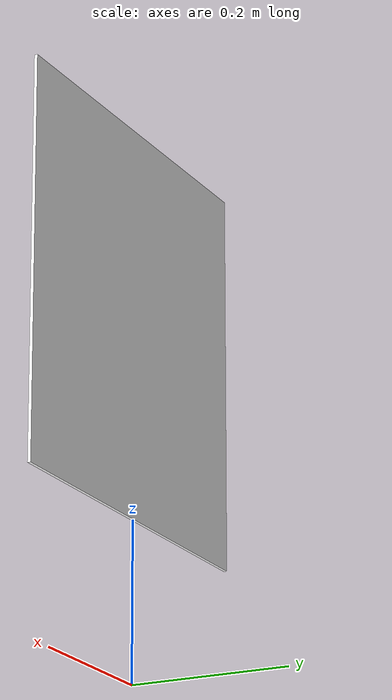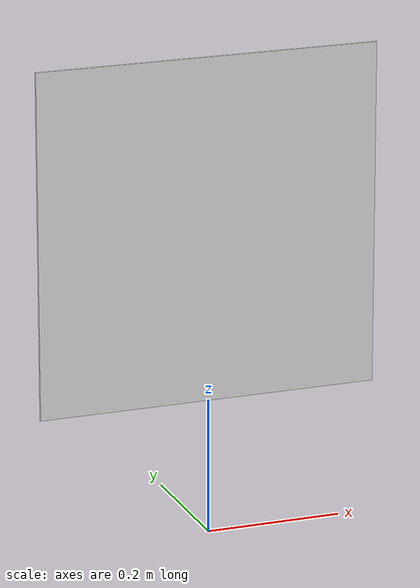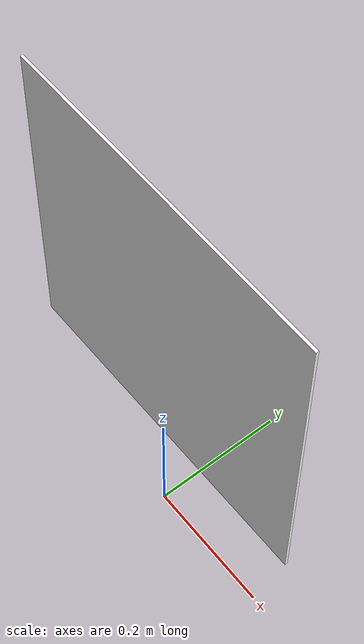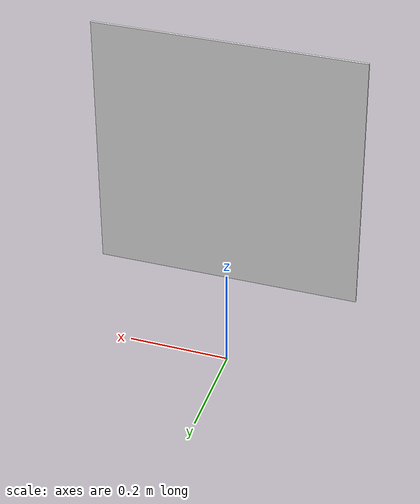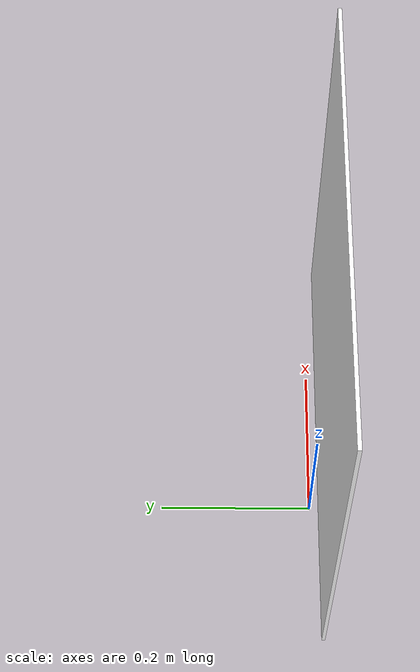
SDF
<?xml version="1.0"?>
<sdf version="1.9">
  <model name="aruco_marker">
    <static>true</static>

    <link name="marker_link">
      <visual name="aruco_4x4_50_id_0">
        <pose>0 0 0.45 0 0 0</pose>
        <cast_shadows>false</cast_shadows>
        <geometry>
          <box>
            <size>0.50 0.004 0.50</size>
          </box>
        </geometry>
        <material>
          <ambient>1 1 1 1</ambient>
          <diffuse>1 1 1 1</diffuse>
          <specular>0 0 0 1</specular>
          <pbr>
            <metal>
              <albedo_map>model://aruco_marker/materials/textures/aruco_4x4_50_id_0.png</albedo_map>
              <metalness>0.0</metalness>
              <roughness>1.0</roughness>
            </metal>
          </pbr>
        </material>
      </visual>
    </link>
  </model>
</sdf>
